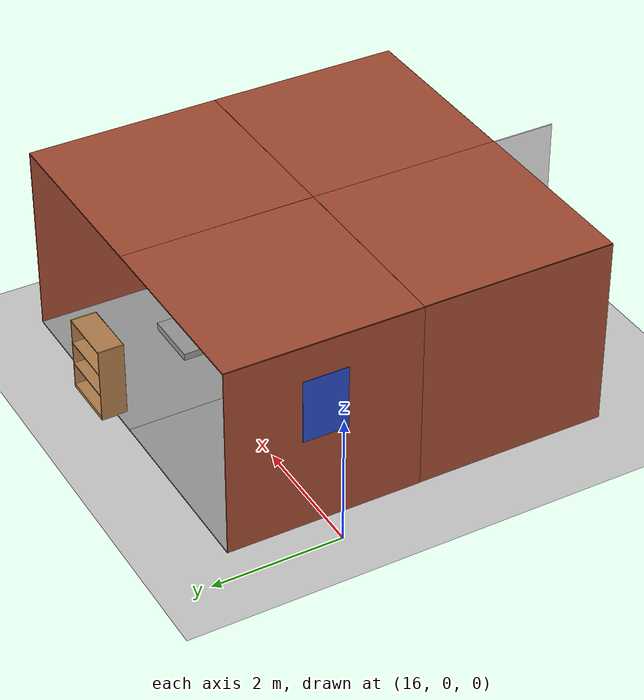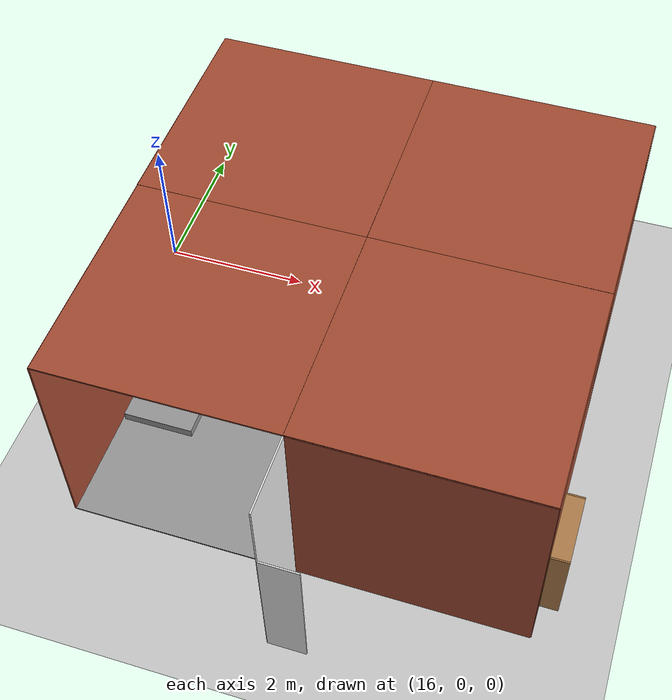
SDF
<sdf version="1.6">
 <world name="default">
  <model name="ground_plane">
   <static>1</static>
   <link name="link">
    <collision name="collision">
     <geometry><plane><normal>0 0 1</normal><size>200 200</size></plane></geometry>
     <surface><friction><ode><mu>100</mu><mu2>50</mu2></ode></friction></surface>
    </collision>
    <visual name="visual">
     <cast_shadows>0</cast_shadows>
     <geometry><plane><normal>0 0 1</normal><size>200 200</size></plane></geometry>
     <material>
      <script><uri>file://media/materials/scripts/gazebo.material</uri><name>Gazebo/Grey</name></script>
     </material>
    </visual>
   </link>
  </model>
  <model name="wall_front_6_0_0_3">
   <static>1</static>
   <pose>18.0 -1.5 1.5 0.0 0.0 3.14</pose>
   <link name="link">
    <collision name="collision"><geometry><box><size>3 0.02 3</size></box></geometry></collision>
    <visual name="visual">
     <material>
      <script><name>Gazebo/Bricks</name><uri>file://media/materials/scripts/gazebo.material</uri></script>
     </material>
     <geometry><box><size>3 0.02 3</size></box></geometry>
    </visual>
   </link>
  </model>
  <model name="wall_right_6_0_0_3">
   <static>1</static>
   <pose>16.5 0.0 1.5 0.0 0.0 4.71</pose>
   <link name="link">
    <collision name="collision"><geometry><box><size>3 0.02 3</size></box></geometry></collision>
    <visual name="visual">
     <material>
      <script><name>Gazebo/Bricks</name><uri>file://media/materials/scripts/gazebo.material</uri></script>
     </material>
     <geometry><box><size>3 0.02 3</size></box></geometry>
    </visual>
   </link>
  </model>
  <model name="wall_top_6_0_0_3">
   <static>1</static>
   <pose>18.0 0.0 3.0 1.57 0.0 3.14</pose>
   <link name="link">
    <collision name="collision"><geometry><box><size>3 0.02 3</size></box></geometry></collision>
    <visual name="visual">
     <material>
      <script><name>Gazebo/Bricks</name><uri>file://media/materials/scripts/gazebo.material</uri></script>
     </material>
     <geometry><box><size>3 0.02 3</size></box></geometry>
    </visual>
   </link>
  </model>
  <model name="ceiling_1_6_0_0_3">
   <pose>18.0 1.0 2.55 0.0 0.0 3.14</pose>
   <link name="link_1">
    <visual name="visual">
     <geometry><box><size>0.8 1 0.1</size></box></geometry>
     <material>
      <script><uri>file://media/materials/scripts/gazebo.material</uri><name>Gazebo/Grey</name></script>
     </material>
    </visual>
    <collision name="collision"><geometry><box><size>0.8 1 0.1</size></box></geometry></collision>
   </link>
   <static>1</static>
  </model>
  <model name="ceiling_1_6_0_1_3">
   <pose>19.0 0.0 2.55 0.0 0.0 4.71</pose>
   <link name="link_1">
    <visual name="visual">
     <geometry><box><size>0.8 1 0.1</size></box></geometry>
     <material>
      <script><uri>file://media/materials/scripts/gazebo.material</uri><name>Gazebo/Grey</name></script>
     </material>
    </visual>
    <collision name="collision"><geometry><box><size>0.8 1 0.1</size></box></geometry></collision>
   </link>
   <static>1</static>
  </model>
  <model name="wall_bottom_6_0_0_3">
   <static>1</static>
   <pose>18.0 0.0 0.0 0.0 0.0 3.14</pose>
   <link name="link">
    <collision name="collision"><geometry><box><size>3 3 0.02</size></box></geometry></collision>
    <visual name="visual">
     <material>
      <script><name>Gazebo/Grey</name><uri>file://media/materials/scripts/gazebo.material</uri></script>
     </material>
     <geometry><box><size>3 3 0.02</size></box></geometry>
    </visual>
   </link>
  </model>
  <model name="panel_6_0_0_3">
   <static>1</static>
   <pose>16.5 0.0 1.95 0.0 0.0 3.14</pose>
   <link name="link">
    <collision name="collision"><geometry><box><size>0.04 0.7 1</size></box></geometry></collision>
    <visual name="visual">
     <material>
      <script><name>Gazebo/Blue</name><uri>file://media/materials/scripts/gazebo.material</uri></script>
     </material>
     <geometry><box><size>0.04 0.7 1</size></box></geometry>
    </visual>
   </link>
  </model>
  <model name="wall_front_7_0_0_2">
   <static>1</static>
   <pose>22.5 0.0 1.5 0.0 0.0 -1.57</pose>
   <link name="link">
    <collision name="collision"><geometry><box><size>3 0.02 3</size></box></geometry></collision>
    <visual name="visual">
     <material>
      <script><name>Gazebo/Bricks</name><uri>file://media/materials/scripts/gazebo.material</uri></script>
     </material>
     <geometry><box><size>3 0.02 3</size></box></geometry>
    </visual>
   </link>
  </model>
  <model name="wall_top_7_0_0_2">
   <static>1</static>
   <pose>21.0 0.0 3.0 1.57 0.0 -1.57</pose>
   <link name="link">
    <collision name="collision"><geometry><box><size>3 0.02 3</size></box></geometry></collision>
    <visual name="visual">
     <material>
      <script><name>Gazebo/Bricks</name><uri>file://media/materials/scripts/gazebo.material</uri></script>
     </material>
     <geometry><box><size>3 0.02 3</size></box></geometry>
    </visual>
   </link>
  </model>
  <model name="ceiling_1_7_0_0_2">
   <pose>20.0 0.0 2.55 0.0 0.0 -1.57</pose>
   <link name="link_1">
    <visual name="visual">
     <geometry><box><size>0.8 1 0.1</size></box></geometry>
     <material>
      <script><uri>file://media/materials/scripts/gazebo.material</uri><name>Gazebo/Grey</name></script>
     </material>
    </visual>
    <collision name="collision"><geometry><box><size>0.8 1 0.1</size></box></geometry></collision>
   </link>
   <static>1</static>
  </model>
  <model name="ceiling_1_7_0_1_2">
   <pose>21.0 -1.0 2.55 0.0 0.0 0.0</pose>
   <link name="link_1">
    <visual name="visual">
     <geometry><box><size>0.8 1 0.1</size></box></geometry>
     <material>
      <script><uri>file://media/materials/scripts/gazebo.material</uri><name>Gazebo/Grey</name></script>
     </material>
    </visual>
    <collision name="collision"><geometry><box><size>0.8 1 0.1</size></box></geometry></collision>
   </link>
   <static>1</static>
  </model>
  <model name="bookshelf_7_0_0_2">
   <static>true</static>
   <pose>20.3518051595955 1.35 0.0 0.0 0.0 -1.57</pose>
   <link name="link">
    <pose>0 0 0 0 0 -1.57</pose>
    <inertial><mass>1.0</mass></inertial>
    <collision name="back">
     <pose>0 0.005 0.6 0 0 0</pose>
     <geometry><box><size>0.9 0.01 1.2</size></box></geometry>
    </collision>
    <visual name="visual1">
     <pose>0 0.005 0.6 0 0 0</pose>
     <geometry><box><size>0.9 0.01 1.2</size></box></geometry>
     <material>
      <script><uri>file://media/materials/scripts/gazebo.material</uri><name>Gazebo/Wood</name></script>
     </material>
    </visual>
    <collision name="left_side">
     <pose>0.45 -0.195 0.6 0 0 0</pose>
     <geometry><box><size>0.02 0.4 1.2</size></box></geometry>
    </collision>
    <visual name="visual2">
     <pose>0.45 -0.195 0.6 0 0 0</pose>
     <geometry><box><size>0.02 0.4 1.2</size></box></geometry>
     <material>
      <script><uri>file://media/materials/scripts/gazebo.material</uri><name>Gazebo/Wood</name></script>
     </material>
    </visual>
    <collision name="right_side">
     <pose>-0.45 -0.195 0.6 0 0 0</pose>
     <geometry><box><size>0.02 0.4 1.2</size></box></geometry>
    </collision>
    <visual name="visual3">
     <pose>-0.45 -0.195 0.6 0 0 0</pose>
     <geometry><box><size>0.02 0.4 1.2</size></box></geometry>
     <material>
      <script><uri>file://media/materials/scripts/gazebo.material</uri><name>Gazebo/Wood</name></script>
     </material>
    </visual>
    <collision name="bottom">
     <pose>0 -0.195 0.03 0 0 0</pose>
     <geometry><box><size>0.88 0.4 0.06</size></box></geometry>
    </collision>
    <visual name="visual4">
     <pose>0 -0.195 0.03 0 0 0</pose>
     <geometry><box><size>0.88 0.4 0.06</size></box></geometry>
     <material>
      <script><uri>file://media/materials/scripts/gazebo.material</uri><name>Gazebo/Wood</name></script>
     </material>
    </visual>
    <collision name="top">
     <pose>0 -0.195 1.19 0 0 0</pose>
     <geometry><box><size>0.88 0.4 0.02</size></box></geometry>
    </collision>
    <visual name="visual5">
     <pose>0 -0.195 1.19 0 0 0</pose>
     <geometry><box><size>0.88 0.4 0.02</size></box></geometry>
     <material>
      <script><uri>file://media/materials/scripts/gazebo.material</uri><name>Gazebo/Wood</name></script>
     </material>
    </visual>
    <collision name="low_shelf">
     <pose>0 -0.195 0.43 0 0 0</pose>
     <geometry><box><size>0.88 0.4 0.02</size></box></geometry>
    </collision>
    <visual name="visual6">
     <pose>0 -0.195 0.43 0 0 0</pose>
     <geometry><box><size>0.88 0.4 0.02</size></box></geometry>
     <material>
      <script><uri>file://media/materials/scripts/gazebo.material</uri><name>Gazebo/Wood</name></script>
     </material>
    </visual>
    <collision name="high_shelf">
     <pose>0 -0.195 0.8 0 0 0</pose>
     <geometry><box><size>0.88 0.4 0.02</size></box></geometry>
    </collision>
    <visual name="visual7">
     <pose>0 -0.195 0.8 0 0 0</pose>
     <geometry><box><size>0.88 0.4 0.02</size></box></geometry>
     <material>
      <script><uri>file://media/materials/scripts/gazebo.material</uri><name>Gazebo/Wood</name></script>
     </material>
    </visual>
   </link>
  </model>
  <model name="wall_bottom_7_0_0_2">
   <static>1</static>
   <pose>21.0 0.0 0.0 0.0 0.0 -1.57</pose>
   <link name="link">
    <collision name="collision"><geometry><box><size>3 3 0.02</size></box></geometry></collision>
    <visual name="visual">
     <material>
      <script><name>Gazebo/Grey</name><uri>file://media/materials/scripts/gazebo.material</uri></script>
     </material>
     <geometry><box><size>3 3 0.02</size></box></geometry>
    </visual>
   </link>
  </model>
  <model name="wall_front_7_-1_0_2">
   <static>1</static>
   <pose>21.0 -4.5 1.5 0.0 0.0 3.14</pose>
   <link name="link">
    <collision name="collision"><geometry><box><size>3 0.02 3</size></box></geometry></collision>
    <visual name="visual">
     <material>
      <script><name>Gazebo/Bricks</name><uri>file://media/materials/scripts/gazebo.material</uri></script>
     </material>
     <geometry><box><size>3 0.02 3</size></box></geometry>
    </visual>
   </link>
  </model>
  <model name="wall_left_7_-1_0_2">
   <static>1</static>
   <pose>22.5 -3.0 1.5 0.0 0.0 4.71</pose>
   <link name="link">
    <collision name="collision"><geometry><box><size>3 0.02 3</size></box></geometry></collision>
    <visual name="visual">
     <material>
      <script><name>Gazebo/Bricks</name><uri>file://media/materials/scripts/gazebo.material</uri></script>
     </material>
     <geometry><box><size>3 0.02 3</size></box></geometry>
    </visual>
   </link>
  </model>
  <model name="wall_top_7_-1_0_2">
   <static>1</static>
   <pose>21.0 -3.0 3.0 1.57 0.0 3.14</pose>
   <link name="link">
    <collision name="collision"><geometry><box><size>3 0.02 3</size></box></geometry></collision>
    <visual name="visual">
     <material>
      <script><name>Gazebo/Bricks</name><uri>file://media/materials/scripts/gazebo.material</uri></script>
     </material>
     <geometry><box><size>3 0.02 3</size></box></geometry>
    </visual>
   </link>
  </model>
  <model name="ceiling_1_7_-1_0_2">
   <pose>21.0 -2.0 2.55 0.0 0.0 3.14</pose>
   <link name="link_1">
    <visual name="visual">
     <geometry><box><size>0.8 1 0.1</size></box></geometry>
     <material>
      <script><uri>file://media/materials/scripts/gazebo.material</uri><name>Gazebo/Grey</name></script>
     </material>
    </visual>
    <collision name="collision"><geometry><box><size>0.8 1 0.1</size></box></geometry></collision>
   </link>
   <static>1</static>
  </model>
  <model name="ceiling_1_7_-1_1_2">
   <pose>20.0 -3.0 2.55 0.0 0.0 4.71</pose>
   <link name="link_1">
    <visual name="visual">
     <geometry><box><size>0.8 1 0.1</size></box></geometry>
     <material>
      <script><uri>file://media/materials/scripts/gazebo.material</uri><name>Gazebo/Grey</name></script>
     </material>
    </visual>
    <collision name="collision"><geometry><box><size>0.8 1 0.1</size></box></geometry></collision>
   </link>
   <static>1</static>
  </model>
  <model name="bookshelf_7_-1_0_2">
   <static>true</static>
   <pose>22.35 -3.6063581885775 0.0 0.0 0.0 3.14</pose>
   <link name="link">
    <pose>0 0 0 0 0 -1.57</pose>
    <inertial><mass>1.0</mass></inertial>
    <collision name="back">
     <pose>0 0.005 0.6 0 0 0</pose>
     <geometry><box><size>0.9 0.01 1.2</size></box></geometry>
    </collision>
    <visual name="visual1">
     <pose>0 0.005 0.6 0 0 0</pose>
     <geometry><box><size>0.9 0.01 1.2</size></box></geometry>
     <material>
      <script><uri>file://media/materials/scripts/gazebo.material</uri><name>Gazebo/Wood</name></script>
     </material>
    </visual>
    <collision name="left_side">
     <pose>0.45 -0.195 0.6 0 0 0</pose>
     <geometry><box><size>0.02 0.4 1.2</size></box></geometry>
    </collision>
    <visual name="visual2">
     <pose>0.45 -0.195 0.6 0 0 0</pose>
     <geometry><box><size>0.02 0.4 1.2</size></box></geometry>
     <material>
      <script><uri>file://media/materials/scripts/gazebo.material</uri><name>Gazebo/Wood</name></script>
     </material>
    </visual>
    <collision name="right_side">
     <pose>-0.45 -0.195 0.6 0 0 0</pose>
     <geometry><box><size>0.02 0.4 1.2</size></box></geometry>
    </collision>
    <visual name="visual3">
     <pose>-0.45 -0.195 0.6 0 0 0</pose>
     <geometry><box><size>0.02 0.4 1.2</size></box></geometry>
     <material>
      <script><uri>file://media/materials/scripts/gazebo.material</uri><name>Gazebo/Wood</name></script>
     </material>
    </visual>
    <collision name="bottom">
     <pose>0 -0.195 0.03 0 0 0</pose>
     <geometry><box><size>0.88 0.4 0.06</size></box></geometry>
    </collision>
    <visual name="visual4">
     <pose>0 -0.195 0.03 0 0 0</pose>
     <geometry><box><size>0.88 0.4 0.06</size></box></geometry>
     <material>
      <script><uri>file://media/materials/scripts/gazebo.material</uri><name>Gazebo/Wood</name></script>
     </material>
    </visual>
    <collision name="top">
     <pose>0 -0.195 1.19 0 0 0</pose>
     <geometry><box><size>0.88 0.4 0.02</size></box></geometry>
    </collision>
    <visual name="visual5">
     <pose>0 -0.195 1.19 0 0 0</pose>
     <geometry><box><size>0.88 0.4 0.02</size></box></geometry>
     <material>
      <script><uri>file://media/materials/scripts/gazebo.material</uri><name>Gazebo/Wood</name></script>
     </material>
    </visual>
    <collision name="low_shelf">
     <pose>0 -0.195 0.43 0 0 0</pose>
     <geometry><box><size>0.88 0.4 0.02</size></box></geometry>
    </collision>
    <visual name="visual6">
     <pose>0 -0.195 0.43 0 0 0</pose>
     <geometry><box><size>0.88 0.4 0.02</size></box></geometry>
     <material>
      <script><uri>file://media/materials/scripts/gazebo.material</uri><name>Gazebo/Wood</name></script>
     </material>
    </visual>
    <collision name="high_shelf">
     <pose>0 -0.195 0.8 0 0 0</pose>
     <geometry><box><size>0.88 0.4 0.02</size></box></geometry>
    </collision>
    <visual name="visual7">
     <pose>0 -0.195 0.8 0 0 0</pose>
     <geometry><box><size>0.88 0.4 0.02</size></box></geometry>
     <material>
      <script><uri>file://media/materials/scripts/gazebo.material</uri><name>Gazebo/Wood</name></script>
     </material>
    </visual>
   </link>
  </model>
  <model name="wall_bottom_7_-1_0_2">
   <static>1</static>
   <pose>21.0 -3.0 0.0 0.0 0.0 3.14</pose>
   <link name="link">
    <collision name="collision"><geometry><box><size>3 3 0.02</size></box></geometry></collision>
    <visual name="visual">
     <material>
      <script><name>Gazebo/Grey</name><uri>file://media/materials/scripts/gazebo.material</uri></script>
     </material>
     <geometry><box><size>3 3 0.02</size></box></geometry>
    </visual>
   </link>
  </model>
  <model name="wall_front_6_-1_0_3">
   <static>1</static>
   <pose>16.5 -3.0 1.5 0.0 0.0 1.57</pose>
   <link name="link">
    <collision name="collision"><geometry><box><size>3 0.02 3</size></box></geometry></collision>
    <visual name="visual">
     <material>
      <script><name>Gazebo/Bricks</name><uri>file://media/materials/scripts/gazebo.material</uri></script>
     </material>
     <geometry><box><size>3 0.02 3</size></box></geometry>
    </visual>
   </link>
  </model>
  <model name="wall_right_6_-1_0_3">
   <static>1</static>
   <pose>18.0 -1.5 1.5 0.0 0.0 3.14</pose>
   <link name="link">
    <collision name="collision"><geometry><box><size>3 0.02 3</size></box></geometry></collision>
    <visual name="visual">
     <material>
      <script><name>Gazebo/Bricks</name><uri>file://media/materials/scripts/gazebo.material</uri></script>
     </material>
     <geometry><box><size>3 0.02 3</size></box></geometry>
    </visual>
   </link>
  </model>
  <model name="wall_top_6_-1_0_3">
   <static>1</static>
   <pose>18.0 -3.0 3.0 1.57 0.0 1.57</pose>
   <link name="link">
    <collision name="collision"><geometry><box><size>3 0.02 3</size></box></geometry></collision>
    <visual name="visual">
     <material>
      <script><name>Gazebo/Bricks</name><uri>file://media/materials/scripts/gazebo.material</uri></script>
     </material>
     <geometry><box><size>3 0.02 3</size></box></geometry>
    </visual>
   </link>
  </model>
  <model name="ceiling_1_6_-1_0_3">
   <pose>19.0 -3.0 2.55 0.0 0.0 1.57</pose>
   <link name="link_1">
    <visual name="visual">
     <geometry><box><size>0.8 1 0.1</size></box></geometry>
     <material>
      <script><uri>file://media/materials/scripts/gazebo.material</uri><name>Gazebo/Grey</name></script>
     </material>
    </visual>
    <collision name="collision"><geometry><box><size>0.8 1 0.1</size></box></geometry></collision>
   </link>
   <static>1</static>
  </model>
  <model name="ceiling_1_6_-1_1_3">
   <pose>18.0 -4.0 2.55 0.0 0.0 3.14</pose>
   <link name="link_1">
    <visual name="visual">
     <geometry><box><size>0.8 1 0.1</size></box></geometry>
     <material>
      <script><uri>file://media/materials/scripts/gazebo.material</uri><name>Gazebo/Grey</name></script>
     </material>
    </visual>
    <collision name="collision"><geometry><box><size>0.8 1 0.1</size></box></geometry></collision>
   </link>
   <static>1</static>
  </model>
  <model name="wall_bottom_6_-1_0_3">
   <static>1</static>
   <pose>18.0 -3.0 0.0 0.0 0.0 1.57</pose>
   <link name="link">
    <collision name="collision"><geometry><box><size>3 3 0.02</size></box></geometry></collision>
    <visual name="visual">
     <material>
      <script><name>Gazebo/Grey</name><uri>file://media/materials/scripts/gazebo.material</uri></script>
     </material>
     <geometry><box><size>3 3 0.02</size></box></geometry>
    </visual>
   </link>
  </model>
  <model name="panel_6_-1_0_3">
   <static>1</static>
   <pose>18.0 -1.5 1.95 0.0 0.0 1.57</pose>
   <link name="link">
    <collision name="collision"><geometry><box><size>0.04 0.7 1</size></box></geometry></collision>
    <visual name="visual">
     <material>
      <script><name>Gazebo/Blue</name><uri>file://media/materials/scripts/gazebo.material</uri></script>
     </material>
     <geometry><box><size>0.04 0.7 1</size></box></geometry>
    </visual>
   </link>
  </model>
  <model name="wall_left_front_right_6_-2_0_2">
   <static>1</static>
   <pose>19.5 -5.0 1.5 0.0 0.0 4.71</pose>
   <link name="link">
    <collision name="collision"><geometry><box><size>1.0 0.02 3</size></box></geometry></collision>
    <visual name="visual">
     <material>
      <script><name>Gazebo/White</name><uri>file://media/materials/scripts/gazebo.material</uri></script>
     </material>
     <geometry><box><size>1.0 0.02 3</size></box></geometry>
    </visual>
   </link>
  </model>
  <model name="wall_left_inside_right_6_-2_0_2">
   <static>1</static>
   <pose>19.75 -5.5 1.0 0.0 0.0 3.14</pose>
   <link name="link">
    <collision name="collision"><geometry><box><size>0.5 0.02 2</size></box></geometry></collision>
    <visual name="visual">
     <material>
      <script><name>Gazebo/White</name><uri>file://media/materials/scripts/gazebo.material</uri></script>
     </material>
     <geometry><box><size>0.5 0.02 2</size></box></geometry>
    </visual>
   </link>
  </model>
 </world>
</sdf>
